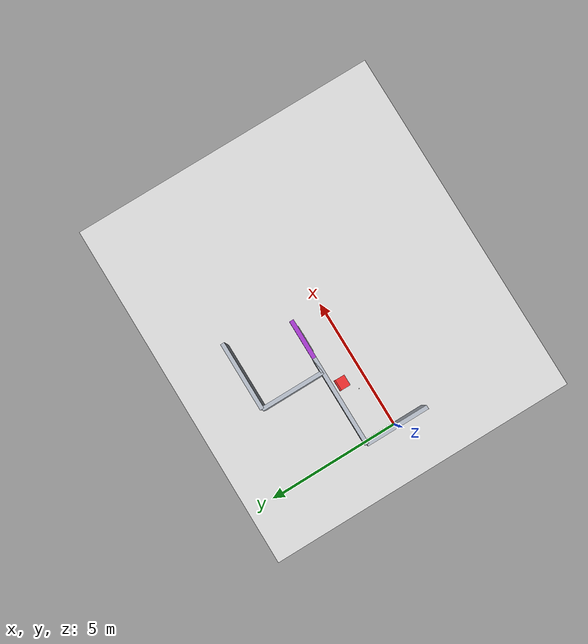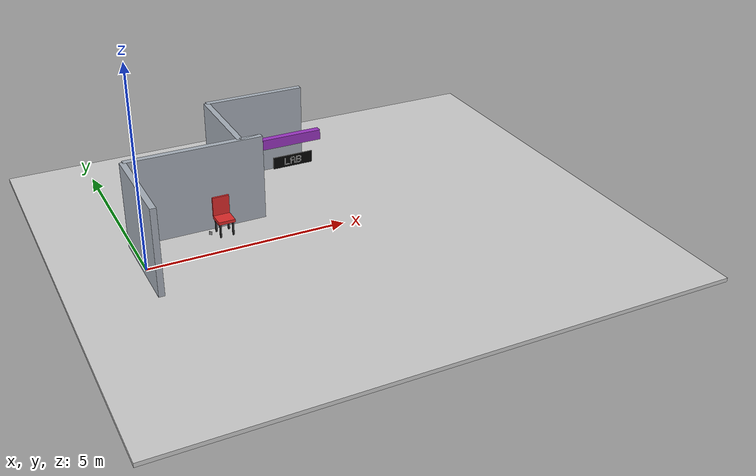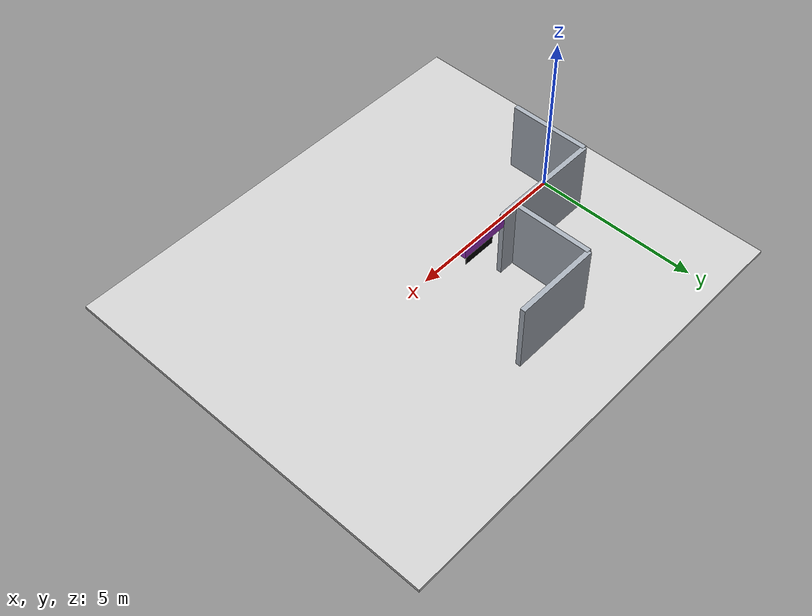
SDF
<sdf version="1.9">
 <world name="default">
  <model name="ground_plane">
   <static>true</static>
   <pose>4.85 0 -0.05 0 0 0</pose>
   <link name="body">
    <collision name="collision"><geometry><box><size>13.7 12 0.1</size></box></geometry></collision>
    <visual name="visual">
     <geometry><box><size>13.7 12 0.1</size></box></geometry>
     <material><ambient>0.8 0.8 0.8 1</ambient><diffuse>0.8 0.8 0.8 1</diffuse></material>
    </visual>
   </link>
  </model>
  <model name="start_wall">
   <static>true</static>
   <pose>0 0 1.1 0 0 0</pose>
   <link name="body">
    <collision name="collision"><geometry><box><size>0.15 2.4 2.2</size></box></geometry></collision>
    <visual name="visual">
     <geometry><box><size>0.15 2.4 2.2</size></box></geometry>
     <material><ambient>0.65 0.68 0.72 1</ambient><diffuse>0.65 0.68 0.72 1</diffuse></material>
    </visual>
   </link>
  </model>
  <model name="hall_1_1">
   <static>true</static>
   <pose>1.7000000000000002 1.2 1.1 0 0 0</pose>
   <link name="body">
    <collision name="collision">
     <geometry><box><size>3.4000000000000004 0.15 2.2</size></box></geometry>
    </collision>
    <visual name="visual">
     <geometry><box><size>3.4000000000000004 0.15 2.2</size></box></geometry>
     <material><ambient>0.65 0.68 0.72 1</ambient><diffuse>0.65 0.68 0.72 1</diffuse></material>
    </visual>
   </link>
  </model>
  <model name="room_1_1_-1">
   <static>true</static>
   <pose>2.8500000000000005 2.4 1.1 0 0 0</pose>
   <link name="body">
    <collision name="collision"><geometry><box><size>0.15 2.4 2.2</size></box></geometry></collision>
    <visual name="visual">
     <geometry><box><size>0.15 2.4 2.2</size></box></geometry>
     <material><ambient>0.65 0.68 0.72 1</ambient><diffuse>0.65 0.68 0.72 1</diffuse></material>
    </visual>
   </link>
  </model>
  <model name="room_end_1_1">
   <static>true</static>
   <pose>4.15 3.5999999999999996 1.1 0 0 0</pose>
   <link name="body">
    <collision name="collision"><geometry><box><size>2.6 0.15 2.2</size></box></geometry></collision>
    <visual name="visual">
     <geometry><box><size>2.6 0.15 2.2</size></box></geometry>
     <material><ambient>0.65 0.68 0.72 1</ambient><diffuse>0.65 0.68 0.72 1</diffuse></material>
    </visual>
   </link>
  </model>
  <model name="jamb_1_1_-1">
   <static>true</static>
   <pose>3.1250000000000004 1.2 1.1 0 0 0</pose>
   <link name="body">
    <collision name="collision"><geometry><box><size>0.55 0.15 2.2</size></box></geometry></collision>
    <visual name="visual">
     <geometry><box><size>0.55 0.15 2.2</size></box></geometry>
     <material><ambient>0.65 0.68 0.72 1</ambient><diffuse>0.65 0.68 0.72 1</diffuse></material>
    </visual>
   </link>
  </model>
  <model name="chair_seat">
   <static>true</static>
   <pose>2.2 0.7999999999999999 0.4 0 0 0</pose>
   <link name="body">
    <collision name="collision"><geometry><box><size>0.42 0.42 0.08</size></box></geometry></collision>
    <visual name="visual">
     <geometry><box><size>0.42 0.42 0.08</size></box></geometry>
     <material><ambient>0.86 0.16 0.16 1</ambient><diffuse>0.86 0.16 0.16 1</diffuse></material>
    </visual>
   </link>
  </model>
  <model name="chair_back">
   <static>true</static>
   <pose>2.2 0.99 0.67 0 0 0</pose>
   <link name="body">
    <collision name="collision"><geometry><box><size>0.42 0.05 0.5</size></box></geometry></collision>
    <visual name="visual">
     <geometry><box><size>0.42 0.05 0.5</size></box></geometry>
     <material><ambient>0.86 0.16 0.16 1</ambient><diffuse>0.86 0.16 0.16 1</diffuse></material>
    </visual>
   </link>
  </model>
  <model name="chair_leg_-0.16_-0.16">
   <static>true</static>
   <pose>2.04 0.6399999999999999 0.19 0 0 0</pose>
   <link name="body">
    <collision name="collision"><geometry><box><size>0.04 0.04 0.38</size></box></geometry></collision>
    <visual name="visual">
     <geometry><box><size>0.04 0.04 0.38</size></box></geometry>
     <material><ambient>0.2 0.2 0.2 1</ambient><diffuse>0.2 0.2 0.2 1</diffuse></material>
    </visual>
   </link>
  </model>
  <model name="chair_leg_-0.16_0.16">
   <static>true</static>
   <pose>2.04 0.96 0.19 0 0 0</pose>
   <link name="body">
    <collision name="collision"><geometry><box><size>0.04 0.04 0.38</size></box></geometry></collision>
    <visual name="visual">
     <geometry><box><size>0.04 0.04 0.38</size></box></geometry>
     <material><ambient>0.2 0.2 0.2 1</ambient><diffuse>0.2 0.2 0.2 1</diffuse></material>
    </visual>
   </link>
  </model>
  <model name="chair_leg_0.16_-0.16">
   <static>true</static>
   <pose>2.3600000000000003 0.6399999999999999 0.19 0 0 0</pose>
   <link name="body">
    <collision name="collision"><geometry><box><size>0.04 0.04 0.38</size></box></geometry></collision>
    <visual name="visual">
     <geometry><box><size>0.04 0.04 0.38</size></box></geometry>
     <material><ambient>0.2 0.2 0.2 1</ambient><diffuse>0.2 0.2 0.2 1</diffuse></material>
    </visual>
   </link>
  </model>
  <model name="chair_leg_0.16_0.16">
   <static>true</static>
   <pose>2.3600000000000003 0.96 0.19 0 0 0</pose>
   <link name="body">
    <collision name="collision"><geometry><box><size>0.04 0.04 0.38</size></box></geometry></collision>
    <visual name="visual">
     <geometry><box><size>0.04 0.04 0.38</size></box></geometry>
     <material><ambient>0.2 0.2 0.2 1</ambient><diffuse>0.2 0.2 0.2 1</diffuse></material>
    </visual>
   </link>
  </model>
  <model name="r3geo_base_r001_left_1_lintel">
   <static>true</static>
   <pose>4.15 1.2 1.95 0 0 0</pose>
   <link name="body">
    <collision name="collision"><geometry><box><size>1.5 0.16 0.25</size></box></geometry></collision>
    <visual name="visual">
     <geometry><box><size>1.5 0.16 0.25</size></box></geometry>
     <material><ambient>0.6 0.2 0.75 1</ambient><diffuse>0.6 0.2 0.75 1</diffuse></material>
    </visual>
   </link>
  </model>
  <model name="readable_r3geo_base_r001_left_1_entrance_corridor">
   <static>true</static>
   <pose>4.15 1.1 1.43 0 0 0</pose>
   <link name="lettering">
    <visual name="backboard">
     <geometry><box><size>1.02 0.018 0.3</size></box></geometry>
     <material>
      <ambient>.015 .015 .015 1</ambient>
      <diffuse>.015 .015 .015 1</diffuse>
      <emissive>.015 .015 .015 1</emissive>
     </material>
     <cast_shadows>false</cast_shadows>
    </visual>
    <visual name="letter_0_0_0">
     <pose>-0.208 -0.014 0.078 0 0 0</pose>
     <geometry><box><size>0.024439999999999996 0.008 0.024439999999999996</size></box></geometry>
     <material>
      <ambient>.96 .96 .96 1</ambient>
      <diffuse>.96 .96 .96 1</diffuse>
      <emissive>.96 .96 .96 1</emissive>
     </material>
     <cast_shadows>false</cast_shadows>
    </visual>
    <visual name="letter_0_1_0">
     <pose>-0.208 -0.014 0.052 0 0 0</pose>
     <geometry><box><size>0.024439999999999996 0.008 0.024439999999999996</size></box></geometry>
     <material>
      <ambient>.96 .96 .96 1</ambient>
      <diffuse>.96 .96 .96 1</diffuse>
      <emissive>.96 .96 .96 1</emissive>
     </material>
     <cast_shadows>false</cast_shadows>
    </visual>
    <visual name="letter_0_2_0">
     <pose>-0.208 -0.014 0.026 0 0 0</pose>
     <geometry><box><size>0.024439999999999996 0.008 0.024439999999999996</size></box></geometry>
     <material>
      <ambient>.96 .96 .96 1</ambient>
      <diffuse>.96 .96 .96 1</diffuse>
      <emissive>.96 .96 .96 1</emissive>
     </material>
     <cast_shadows>false</cast_shadows>
    </visual>
    <visual name="letter_0_3_0">
     <pose>-0.208 -0.014 0 0 0 0</pose>
     <geometry><box><size>0.024439999999999996 0.008 0.024439999999999996</size></box></geometry>
     <material>
      <ambient>.96 .96 .96 1</ambient>
      <diffuse>.96 .96 .96 1</diffuse>
      <emissive>.96 .96 .96 1</emissive>
     </material>
     <cast_shadows>false</cast_shadows>
    </visual>
    <visual name="letter_0_4_0">
     <pose>-0.208 -0.014 -0.026 0 0 0</pose>
     <geometry><box><size>0.024439999999999996 0.008 0.024439999999999996</size></box></geometry>
     <material>
      <ambient>.96 .96 .96 1</ambient>
      <diffuse>.96 .96 .96 1</diffuse>
      <emissive>.96 .96 .96 1</emissive>
     </material>
     <cast_shadows>false</cast_shadows>
    </visual>
    <visual name="letter_0_5_0">
     <pose>-0.208 -0.014 -0.052 0 0 0</pose>
     <geometry><box><size>0.024439999999999996 0.008 0.024439999999999996</size></box></geometry>
     <material>
      <ambient>.96 .96 .96 1</ambient>
      <diffuse>.96 .96 .96 1</diffuse>
      <emissive>.96 .96 .96 1</emissive>
     </material>
     <cast_shadows>false</cast_shadows>
    </visual>
    <visual name="letter_0_6_0">
     <pose>-0.208 -0.014 -0.078 0 0 0</pose>
     <geometry><box><size>0.024439999999999996 0.008 0.024439999999999996</size></box></geometry>
     <material>
      <ambient>.96 .96 .96 1</ambient>
      <diffuse>.96 .96 .96 1</diffuse>
      <emissive>.96 .96 .96 1</emissive>
     </material>
     <cast_shadows>false</cast_shadows>
    </visual>
    <visual name="letter_0_6_1">
     <pose>-0.182 -0.014 -0.078 0 0 0</pose>
     <geometry><box><size>0.024439999999999996 0.008 0.024439999999999996</size></box></geometry>
     <material>
      <ambient>.96 .96 .96 1</ambient>
      <diffuse>.96 .96 .96 1</diffuse>
      <emissive>.96 .96 .96 1</emissive>
     </material>
     <cast_shadows>false</cast_shadows>
    </visual>
    <visual name="letter_0_6_2">
     <pose>-0.156 -0.014 -0.078 0 0 0</pose>
     <geometry><box><size>0.024439999999999996 0.008 0.024439999999999996</size></box></geometry>
     <material>
      <ambient>.96 .96 .96 1</ambient>
      <diffuse>.96 .96 .96 1</diffuse>
      <emissive>.96 .96 .96 1</emissive>
     </material>
     <cast_shadows>false</cast_shadows>
    </visual>
    <visual name="letter_0_6_3">
     <pose>-0.13 -0.014 -0.078 0 0 0</pose>
     <geometry><box><size>0.024439999999999996 0.008 0.024439999999999996</size></box></geometry>
     <material>
      <ambient>.96 .96 .96 1</ambient>
      <diffuse>.96 .96 .96 1</diffuse>
      <emissive>.96 .96 .96 1</emissive>
     </material>
     <cast_shadows>false</cast_shadows>
    </visual>
    <visual name="letter_0_6_4">
     <pose>-0.104 -0.014 -0.078 0 0 0</pose>
     <geometry><box><size>0.024439999999999996 0.008 0.024439999999999996</size></box></geometry>
     <material>
      <ambient>.96 .96 .96 1</ambient>
      <diffuse>.96 .96 .96 1</diffuse>
      <emissive>.96 .96 .96 1</emissive>
     </material>
     <cast_shadows>false</cast_shadows>
    </visual>
    <visual name="letter_1_0_1">
     <pose>-0.026 -0.014 0.078 0 0 0</pose>
     <geometry><box><size>0.024439999999999996 0.008 0.024439999999999996</size></box></geometry>
     <material>
      <ambient>.96 .96 .96 1</ambient>
      <diffuse>.96 .96 .96 1</diffuse>
      <emissive>.96 .96 .96 1</emissive>
     </material>
     <cast_shadows>false</cast_shadows>
    </visual>
    <visual name="letter_1_0_2">
     <pose>0 -0.014 0.078 0 0 0</pose>
     <geometry><box><size>0.024439999999999996 0.008 0.024439999999999996</size></box></geometry>
     <material>
      <ambient>.96 .96 .96 1</ambient>
      <diffuse>.96 .96 .96 1</diffuse>
      <emissive>.96 .96 .96 1</emissive>
     </material>
     <cast_shadows>false</cast_shadows>
    </visual>
    <visual name="letter_1_0_3">
     <pose>0.026 -0.014 0.078 0 0 0</pose>
     <geometry><box><size>0.024439999999999996 0.008 0.024439999999999996</size></box></geometry>
     <material>
      <ambient>.96 .96 .96 1</ambient>
      <diffuse>.96 .96 .96 1</diffuse>
      <emissive>.96 .96 .96 1</emissive>
     </material>
     <cast_shadows>false</cast_shadows>
    </visual>
    <visual name="letter_1_1_0">
     <pose>-0.052 -0.014 0.052 0 0 0</pose>
     <geometry><box><size>0.024439999999999996 0.008 0.024439999999999996</size></box></geometry>
     <material>
      <ambient>.96 .96 .96 1</ambient>
      <diffuse>.96 .96 .96 1</diffuse>
      <emissive>.96 .96 .96 1</emissive>
     </material>
     <cast_shadows>false</cast_shadows>
    </visual>
    <visual name="letter_1_1_4">
     <pose>0.052 -0.014 0.052 0 0 0</pose>
     <geometry><box><size>0.024439999999999996 0.008 0.024439999999999996</size></box></geometry>
     <material>
      <ambient>.96 .96 .96 1</ambient>
      <diffuse>.96 .96 .96 1</diffuse>
      <emissive>.96 .96 .96 1</emissive>
     </material>
     <cast_shadows>false</cast_shadows>
    </visual>
    <visual name="letter_1_2_0">
     <pose>-0.052 -0.014 0.026 0 0 0</pose>
     <geometry><box><size>0.024439999999999996 0.008 0.024439999999999996</size></box></geometry>
     <material>
      <ambient>.96 .96 .96 1</ambient>
      <diffuse>.96 .96 .96 1</diffuse>
      <emissive>.96 .96 .96 1</emissive>
     </material>
     <cast_shadows>false</cast_shadows>
    </visual>
    <visual name="letter_1_2_4">
     <pose>0.052 -0.014 0.026 0 0 0</pose>
     <geometry><box><size>0.024439999999999996 0.008 0.024439999999999996</size></box></geometry>
     <material>
      <ambient>.96 .96 .96 1</ambient>
      <diffuse>.96 .96 .96 1</diffuse>
      <emissive>.96 .96 .96 1</emissive>
     </material>
     <cast_shadows>false</cast_shadows>
    </visual>
    <visual name="letter_1_3_0">
     <pose>-0.052 -0.014 0 0 0 0</pose>
     <geometry><box><size>0.024439999999999996 0.008 0.024439999999999996</size></box></geometry>
     <material>
      <ambient>.96 .96 .96 1</ambient>
      <diffuse>.96 .96 .96 1</diffuse>
      <emissive>.96 .96 .96 1</emissive>
     </material>
     <cast_shadows>false</cast_shadows>
    </visual>
    <visual name="letter_1_3_1">
     <pose>-0.026 -0.014 0 0 0 0</pose>
     <geometry><box><size>0.024439999999999996 0.008 0.024439999999999996</size></box></geometry>
     <material>
      <ambient>.96 .96 .96 1</ambient>
      <diffuse>.96 .96 .96 1</diffuse>
      <emissive>.96 .96 .96 1</emissive>
     </material>
     <cast_shadows>false</cast_shadows>
    </visual>
    <visual name="letter_1_3_2">
     <pose>0 -0.014 0 0 0 0</pose>
     <geometry><box><size>0.024439999999999996 0.008 0.024439999999999996</size></box></geometry>
     <material>
      <ambient>.96 .96 .96 1</ambient>
      <diffuse>.96 .96 .96 1</diffuse>
      <emissive>.96 .96 .96 1</emissive>
     </material>
     <cast_shadows>false</cast_shadows>
    </visual>
    <visual name="letter_1_3_3">
     <pose>0.026 -0.014 0 0 0 0</pose>
     <geometry><box><size>0.024439999999999996 0.008 0.024439999999999996</size></box></geometry>
     <material>
      <ambient>.96 .96 .96 1</ambient>
      <diffuse>.96 .96 .96 1</diffuse>
      <emissive>.96 .96 .96 1</emissive>
     </material>
     <cast_shadows>false</cast_shadows>
    </visual>
    <visual name="letter_1_3_4">
     <pose>0.052 -0.014 0 0 0 0</pose>
     <geometry><box><size>0.024439999999999996 0.008 0.024439999999999996</size></box></geometry>
     <material>
      <ambient>.96 .96 .96 1</ambient>
      <diffuse>.96 .96 .96 1</diffuse>
      <emissive>.96 .96 .96 1</emissive>
     </material>
     <cast_shadows>false</cast_shadows>
    </visual>
    <visual name="letter_1_4_0">
     <pose>-0.052 -0.014 -0.026 0 0 0</pose>
     <geometry><box><size>0.024439999999999996 0.008 0.024439999999999996</size></box></geometry>
     <material>
      <ambient>.96 .96 .96 1</ambient>
      <diffuse>.96 .96 .96 1</diffuse>
      <emissive>.96 .96 .96 1</emissive>
     </material>
     <cast_shadows>false</cast_shadows>
    </visual>
    <visual name="letter_1_4_4">
     <pose>0.052 -0.014 -0.026 0 0 0</pose>
     <geometry><box><size>0.024439999999999996 0.008 0.024439999999999996</size></box></geometry>
     <material>
      <ambient>.96 .96 .96 1</ambient>
      <diffuse>.96 .96 .96 1</diffuse>
      <emissive>.96 .96 .96 1</emissive>
     </material>
     <cast_shadows>false</cast_shadows>
    </visual>
    <visual name="letter_1_5_0">
     <pose>-0.052 -0.014 -0.052 0 0 0</pose>
     <geometry><box><size>0.024439999999999996 0.008 0.024439999999999996</size></box></geometry>
     <material>
      <ambient>.96 .96 .96 1</ambient>
      <diffuse>.96 .96 .96 1</diffuse>
      <emissive>.96 .96 .96 1</emissive>
     </material>
     <cast_shadows>false</cast_shadows>
    </visual>
    <visual name="letter_1_5_4">
     <pose>0.052 -0.014 -0.052 0 0 0</pose>
     <geometry><box><size>0.024439999999999996 0.008 0.024439999999999996</size></box></geometry>
     <material>
      <ambient>.96 .96 .96 1</ambient>
      <diffuse>.96 .96 .96 1</diffuse>
      <emissive>.96 .96 .96 1</emissive>
     </material>
     <cast_shadows>false</cast_shadows>
    </visual>
    <visual name="letter_1_6_0">
     <pose>-0.052 -0.014 -0.078 0 0 0</pose>
     <geometry><box><size>0.024439999999999996 0.008 0.024439999999999996</size></box></geometry>
     <material>
      <ambient>.96 .96 .96 1</ambient>
      <diffuse>.96 .96 .96 1</diffuse>
      <emissive>.96 .96 .96 1</emissive>
     </material>
     <cast_shadows>false</cast_shadows>
    </visual>
    <visual name="letter_1_6_4">
     <pose>0.052 -0.014 -0.078 0 0 0</pose>
     <geometry><box><size>0.024439999999999996 0.008 0.024439999999999996</size></box></geometry>
     <material>
      <ambient>.96 .96 .96 1</ambient>
      <diffuse>.96 .96 .96 1</diffuse>
      <emissive>.96 .96 .96 1</emissive>
     </material>
     <cast_shadows>false</cast_shadows>
    </visual>
    <visual name="letter_2_0_0">
     <pose>0.104 -0.014 0.078 0 0 0</pose>
     <geometry><box><size>0.024439999999999996 0.008 0.024439999999999996</size></box></geometry>
     <material>
      <ambient>.96 .96 .96 1</ambient>
      <diffuse>.96 .96 .96 1</diffuse>
      <emissive>.96 .96 .96 1</emissive>
     </material>
     <cast_shadows>false</cast_shadows>
    </visual>
    <visual name="letter_2_0_1">
     <pose>0.13 -0.014 0.078 0 0 0</pose>
     <geometry><box><size>0.024439999999999996 0.008 0.024439999999999996</size></box></geometry>
     <material>
      <ambient>.96 .96 .96 1</ambient>
      <diffuse>.96 .96 .96 1</diffuse>
      <emissive>.96 .96 .96 1</emissive>
     </material>
     <cast_shadows>false</cast_shadows>
    </visual>
    <visual name="letter_2_0_2">
     <pose>0.156 -0.014 0.078 0 0 0</pose>
     <geometry><box><size>0.024439999999999996 0.008 0.024439999999999996</size></box></geometry>
     <material>
      <ambient>.96 .96 .96 1</ambient>
      <diffuse>.96 .96 .96 1</diffuse>
      <emissive>.96 .96 .96 1</emissive>
     </material>
     <cast_shadows>false</cast_shadows>
    </visual>
    <visual name="letter_2_0_3">
     <pose>0.182 -0.014 0.078 0 0 0</pose>
     <geometry><box><size>0.024439999999999996 0.008 0.024439999999999996</size></box></geometry>
     <material>
      <ambient>.96 .96 .96 1</ambient>
      <diffuse>.96 .96 .96 1</diffuse>
      <emissive>.96 .96 .96 1</emissive>
     </material>
     <cast_shadows>false</cast_shadows>
    </visual>
    <visual name="letter_2_1_0">
     <pose>0.104 -0.014 0.052 0 0 0</pose>
     <geometry><box><size>0.024439999999999996 0.008 0.024439999999999996</size></box></geometry>
     <material>
      <ambient>.96 .96 .96 1</ambient>
      <diffuse>.96 .96 .96 1</diffuse>
      <emissive>.96 .96 .96 1</emissive>
     </material>
     <cast_shadows>false</cast_shadows>
    </visual>
    <visual name="letter_2_1_4">
     <pose>0.208 -0.014 0.052 0 0 0</pose>
     <geometry><box><size>0.024439999999999996 0.008 0.024439999999999996</size></box></geometry>
     <material>
      <ambient>.96 .96 .96 1</ambient>
      <diffuse>.96 .96 .96 1</diffuse>
      <emissive>.96 .96 .96 1</emissive>
     </material>
     <cast_shadows>false</cast_shadows>
    </visual>
    <visual name="letter_2_2_0">
     <pose>0.104 -0.014 0.026 0 0 0</pose>
     <geometry><box><size>0.024439999999999996 0.008 0.024439999999999996</size></box></geometry>
     <material>
      <ambient>.96 .96 .96 1</ambient>
      <diffuse>.96 .96 .96 1</diffuse>
      <emissive>.96 .96 .96 1</emissive>
     </material>
     <cast_shadows>false</cast_shadows>
    </visual>
    <visual name="letter_2_2_4">
     <pose>0.208 -0.014 0.026 0 0 0</pose>
     <geometry><box><size>0.024439999999999996 0.008 0.024439999999999996</size></box></geometry>
     <material>
      <ambient>.96 .96 .96 1</ambient>
      <diffuse>.96 .96 .96 1</diffuse>
      <emissive>.96 .96 .96 1</emissive>
     </material>
     <cast_shadows>false</cast_shadows>
    </visual>
    <visual name="letter_2_3_0">
     <pose>0.104 -0.014 0 0 0 0</pose>
     <geometry><box><size>0.024439999999999996 0.008 0.024439999999999996</size></box></geometry>
     <material>
      <ambient>.96 .96 .96 1</ambient>
      <diffuse>.96 .96 .96 1</diffuse>
      <emissive>.96 .96 .96 1</emissive>
     </material>
     <cast_shadows>false</cast_shadows>
    </visual>
    <visual name="letter_2_3_1">
     <pose>0.13 -0.014 0 0 0 0</pose>
     <geometry><box><size>0.024439999999999996 0.008 0.024439999999999996</size></box></geometry>
     <material>
      <ambient>.96 .96 .96 1</ambient>
      <diffuse>.96 .96 .96 1</diffuse>
      <emissive>.96 .96 .96 1</emissive>
     </material>
     <cast_shadows>false</cast_shadows>
    </visual>
    <visual name="letter_2_3_2">
     <pose>0.156 -0.014 0 0 0 0</pose>
     <geometry><box><size>0.024439999999999996 0.008 0.024439999999999996</size></box></geometry>
     <material>
      <ambient>.96 .96 .96 1</ambient>
      <diffuse>.96 .96 .96 1</diffuse>
      <emissive>.96 .96 .96 1</emissive>
     </material>
     <cast_shadows>false</cast_shadows>
    </visual>
    <visual name="letter_2_3_3">
     <pose>0.182 -0.014 0 0 0 0</pose>
     <geometry><box><size>0.024439999999999996 0.008 0.024439999999999996</size></box></geometry>
     <material>
      <ambient>.96 .96 .96 1</ambient>
      <diffuse>.96 .96 .96 1</diffuse>
      <emissive>.96 .96 .96 1</emissive>
     </material>
     <cast_shadows>false</cast_shadows>
    </visual>
    <visual name="letter_2_4_0">
     <pose>0.104 -0.014 -0.026 0 0 0</pose>
     <geometry><box><size>0.024439999999999996 0.008 0.024439999999999996</size></box></geometry>
     <material>
      <ambient>.96 .96 .96 1</ambient>
      <diffuse>.96 .96 .96 1</diffuse>
      <emissive>.96 .96 .96 1</emissive>
     </material>
     <cast_shadows>false</cast_shadows>
    </visual>
    <visual name="letter_2_4_4">
     <pose>0.208 -0.014 -0.026 0 0 0</pose>
     <geometry><box><size>0.024439999999999996 0.008 0.024439999999999996</size></box></geometry>
     <material>
      <ambient>.96 .96 .96 1</ambient>
      <diffuse>.96 .96 .96 1</diffuse>
      <emissive>.96 .96 .96 1</emissive>
     </material>
     <cast_shadows>false</cast_shadows>
    </visual>
    <visual name="letter_2_5_0">
     <pose>0.104 -0.014 -0.052 0 0 0</pose>
     <geometry><box><size>0.024439999999999996 0.008 0.024439999999999996</size></box></geometry>
     <material>
      <ambient>.96 .96 .96 1</ambient>
      <diffuse>.96 .96 .96 1</diffuse>
      <emissive>.96 .96 .96 1</emissive>
     </material>
     <cast_shadows>false</cast_shadows>
    </visual>
    <visual name="letter_2_5_4">
     <pose>0.208 -0.014 -0.052 0 0 0</pose>
     <geometry><box><size>0.024439999999999996 0.008 0.024439999999999996</size></box></geometry>
     <material>
      <ambient>.96 .96 .96 1</ambient>
      <diffuse>.96 .96 .96 1</diffuse>
      <emissive>.96 .96 .96 1</emissive>
     </material>
     <cast_shadows>false</cast_shadows>
    </visual>
    <visual name="letter_2_6_0">
     <pose>0.104 -0.014 -0.078 0 0 0</pose>
     <geometry><box><size>0.024439999999999996 0.008 0.024439999999999996</size></box></geometry>
     <material>
      <ambient>.96 .96 .96 1</ambient>
      <diffuse>.96 .96 .96 1</diffuse>
      <emissive>.96 .96 .96 1</emissive>
     </material>
     <cast_shadows>false</cast_shadows>
    </visual>
    <visual name="letter_2_6_1">
     <pose>0.13 -0.014 -0.078 0 0 0</pose>
     <geometry><box><size>0.024439999999999996 0.008 0.024439999999999996</size></box></geometry>
     <material>
      <ambient>.96 .96 .96 1</ambient>
      <diffuse>.96 .96 .96 1</diffuse>
      <emissive>.96 .96 .96 1</emissive>
     </material>
     <cast_shadows>false</cast_shadows>
    </visual>
    <visual name="letter_2_6_2">
     <pose>0.156 -0.014 -0.078 0 0 0</pose>
     <geometry><box><size>0.024439999999999996 0.008 0.024439999999999996</size></box></geometry>
     <material>
      <ambient>.96 .96 .96 1</ambient>
      <diffuse>.96 .96 .96 1</diffuse>
      <emissive>.96 .96 .96 1</emissive>
     </material>
     <cast_shadows>false</cast_shadows>
    </visual>
    <visual name="letter_2_6_3">
     <pose>0.182 -0.014 -0.078 0 0 0</pose>
     <geometry><box><size>0.024439999999999996 0.008 0.024439999999999996</size></box></geometry>
     <material>
      <ambient>.96 .96 .96 1</ambient>
      <diffuse>.96 .96 .96 1</diffuse>
      <emissive>.96 .96 .96 1</emissive>
     </material>
     <cast_shadows>false</cast_shadows>
    </visual>
   </link>
  </model>
  <model name="expansion_occluder_dev_01-r001-red-chair">
   <static>true</static>
   <pose>1.7112471793238284 0.4050788259838907 0.33042130141117243 -1.5707963267948966 -0.0 -0.7621465405869856</pose>
   <link name="visual_only">
    <visual name="neutral_occluder">
     <geometry><box><size>0.07832856031569538 0.08955739717765504 0.002</size></box></geometry>
     <material><ambient>.45 .45 .45 1</ambient><diffuse>.45 .45 .45 1</diffuse></material>
     <cast_shadows>false</cast_shadows>
    </visual>
   </link>
  </model>
 </world>
</sdf>
